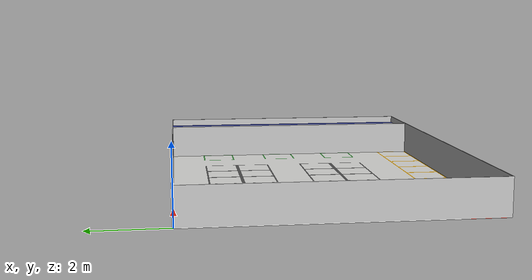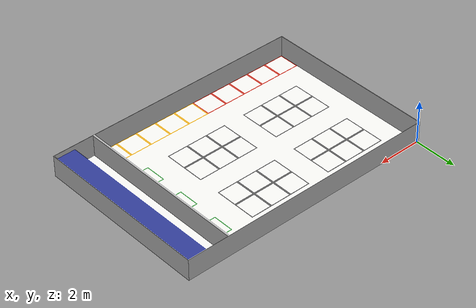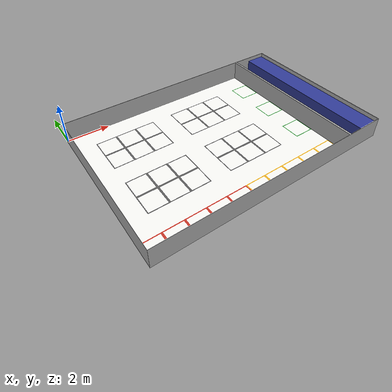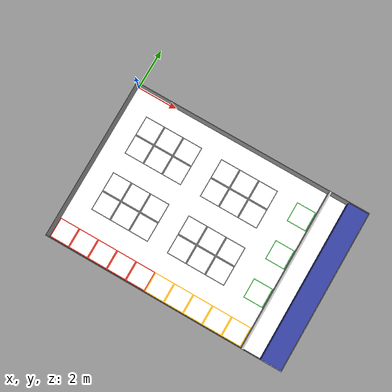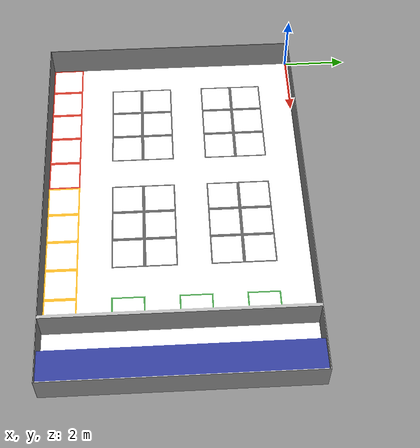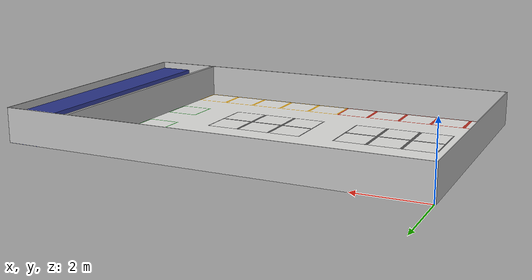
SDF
<?xml version="1.0" ?>
<sdf version="1.5">
  <model name="warehouse">
    <static>true</static>

    <link name="link">
      <collision name="collision">
        <geometry>
          <mesh>
            <uri>model://warehouse/meshes/area_warehouse1.dae</uri>
          </mesh>
        </geometry>
      </collision>
      <visual name="visual">
        <geometry>
          <mesh>
            <uri>model://warehouse/meshes/area_warehouse1.dae</uri>
          </mesh>
        </geometry>
      </visual>
    </link>
  </model>
</sdf>
